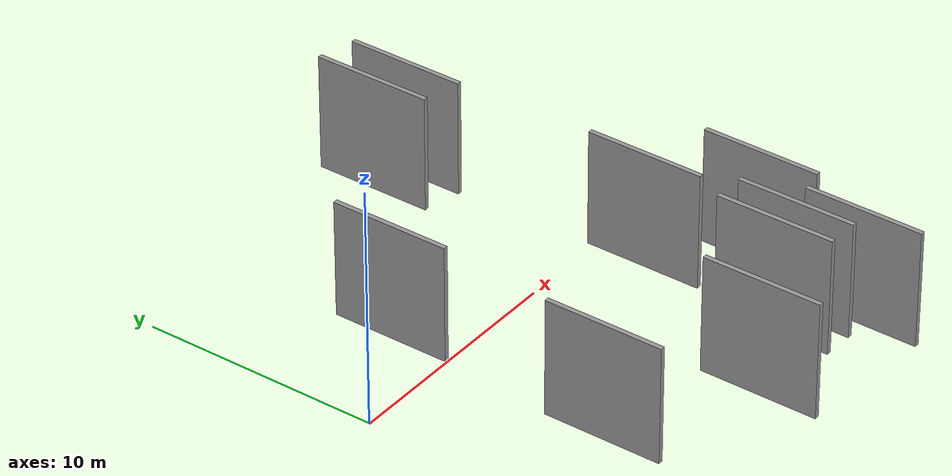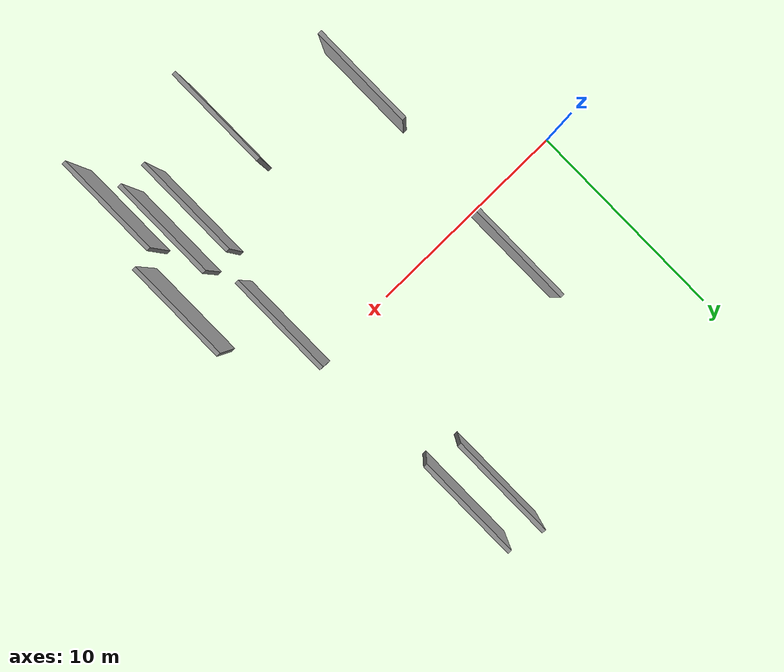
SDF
<sdf version="1.6">
 <world name="default">
  <scene>
   <sky><clouds><speed>12</speed></clouds></sky>
   <ambient>0.4 0.4 0.4 1</ambient>
   <background>0.7 0.7 0.7 1</background>
   <shadows>1</shadows>
  </scene>
  <gravity>0 0 -9.8066</gravity>
  <magnetic_field>6e-06 2.3e-05 -4.2e-05</magnetic_field>
  <physics default="0" name="default_physics" type="ode">
   <ode>
    <solver>
     <type>quick</type>
     <iters>10</iters>
     <sor>1.0</sor>
     <use_dynamic_moi_rescaling>0</use_dynamic_moi_rescaling>
    </solver>
    <constraints>
     <cfm>0</cfm>
     <erp>0.2</erp>
     <contact_max_correcting_vel>100</contact_max_correcting_vel>
     <contact_surface_layer>0.001</contact_surface_layer>
    </constraints>
   </ode>
   <max_step_size>0.004</max_step_size>
   <real_time_factor>1</real_time_factor>
   <real_time_update_rate>250</real_time_update_rate>
  </physics>
  <light name="sun" type="directional">
   <pose>0 0 10 0 0 0</pose>
   <diffuse>0.8 0.8 0.8 1</diffuse>
   <specular>0.2 0.2 0.2 1</specular>
   <attenuation>
    <range>1000</range>
    <constant>0.9</constant>
    <linear>0.01</linear>
    <quadratic>0.001</quadratic>
   </attenuation>
   <direction>-0.5 0.1 -0.9</direction>
  </light>
  <model name="grey_wall_1">
   <static>1</static>
   <pose>16.5393 -5.5922 0.0 0.000000 0.000000 1.570796</pose>
   <link name="link">
    <pose>0 0 2.50 0 0 0</pose>
    <collision name="collision"><geometry><box><size>5.00 0.2 5.00</size></box></geometry></collision>
    <visual name="visual">
     <cast_shadows>0</cast_shadows>
     <geometry><box><size>5.00 0.2 5.00</size></box></geometry>
     <material>
      <script>
       <uri>model://grey_wall/materials/scripts</uri>
       <uri>model://grey_wall/materials/textures</uri>
       <name>vrc/grey_wall</name>
      </script>
     </material>
    </visual>
   </link>
  </model>
  <model name="grey_wall_2">
   <static>1</static>
   <pose>4.7063 2.5771 0.0 0.000000 0.000000 1.570796</pose>
   <link name="link">
    <pose>0 0 2.50 0 0 0</pose>
    <collision name="collision"><geometry><box><size>5.00 0.2 5.00</size></box></geometry></collision>
    <visual name="visual">
     <cast_shadows>0</cast_shadows>
     <geometry><box><size>5.00 0.2 5.00</size></box></geometry>
     <material>
      <script>
       <uri>model://grey_wall/materials/scripts</uri>
       <uri>model://grey_wall/materials/textures</uri>
       <name>vrc/grey_wall</name>
      </script>
     </material>
    </visual>
   </link>
  </model>
  <model name="grey_wall_3">
   <static>1</static>
   <pose>12.0349 8.9862 0.0 0.000000 0.000000 1.570796</pose>
   <link name="link">
    <pose>0 0 2.50 0 0 0</pose>
    <collision name="collision"><geometry><box><size>5.00 0.2 5.00</size></box></geometry></collision>
    <visual name="visual">
     <cast_shadows>0</cast_shadows>
     <geometry><box><size>5.00 0.2 5.00</size></box></geometry>
     <material>
      <script>
       <uri>model://grey_wall/materials/scripts</uri>
       <uri>model://grey_wall/materials/textures</uri>
       <name>vrc/grey_wall</name>
      </script>
     </material>
    </visual>
   </link>
  </model>
  <model name="grey_wall_4">
   <static>1</static>
   <pose>15.5626 -10.7237 0.0 0.000000 0.000000 1.570796</pose>
   <link name="link">
    <pose>0 0 2.50 0 0 0</pose>
    <collision name="collision"><geometry><box><size>5.00 0.2 5.00</size></box></geometry></collision>
    <visual name="visual">
     <cast_shadows>0</cast_shadows>
     <geometry><box><size>5.00 0.2 5.00</size></box></geometry>
     <material>
      <script>
       <uri>model://grey_wall/materials/scripts</uri>
       <uri>model://grey_wall/materials/textures</uri>
       <name>vrc/grey_wall</name>
      </script>
     </material>
    </visual>
   </link>
  </model>
  <model name="grey_wall_5">
   <static>1</static>
   <pose>13.6332 8.6137 0.0 0.000000 0.000000 1.570796</pose>
   <link name="link">
    <pose>0 0 2.50 0 0 0</pose>
    <collision name="collision"><geometry><box><size>5.00 0.2 5.00</size></box></geometry></collision>
    <visual name="visual">
     <cast_shadows>0</cast_shadows>
     <geometry><box><size>5.00 0.2 5.00</size></box></geometry>
     <material>
      <script>
       <uri>model://grey_wall/materials/scripts</uri>
       <uri>model://grey_wall/materials/textures</uri>
       <name>vrc/grey_wall</name>
      </script>
     </material>
    </visual>
   </link>
  </model>
  <model name="grey_wall_6">
   <static>1</static>
   <pose>9.7441 -10.1977 0.0 0.000000 0.000000 1.570796</pose>
   <link name="link">
    <pose>0 0 2.50 0 0 0</pose>
    <collision name="collision"><geometry><box><size>5.00 0.2 5.00</size></box></geometry></collision>
    <visual name="visual">
     <cast_shadows>0</cast_shadows>
     <geometry><box><size>5.00 0.2 5.00</size></box></geometry>
     <material>
      <script>
       <uri>model://grey_wall/materials/scripts</uri>
       <uri>model://grey_wall/materials/textures</uri>
       <name>vrc/grey_wall</name>
      </script>
     </material>
    </visual>
   </link>
  </model>
  <model name="grey_wall_7">
   <static>1</static>
   <pose>4.2701 -7.1948 0.0 0.000000 0.000000 1.570796</pose>
   <link name="link">
    <pose>0 0 2.50 0 0 0</pose>
    <collision name="collision"><geometry><box><size>5.00 0.2 5.00</size></box></geometry></collision>
    <visual name="visual">
     <cast_shadows>0</cast_shadows>
     <geometry><box><size>5.00 0.2 5.00</size></box></geometry>
     <material>
      <script>
       <uri>model://grey_wall/materials/scripts</uri>
       <uri>model://grey_wall/materials/textures</uri>
       <name>vrc/grey_wall</name>
      </script>
     </material>
    </visual>
   </link>
  </model>
  <model name="grey_wall_8">
   <static>1</static>
   <pose>13.8960 -2.2253 0.0 0.000000 0.000000 1.570796</pose>
   <link name="link">
    <pose>0 0 2.50 0 0 0</pose>
    <collision name="collision"><geometry><box><size>5.00 0.2 5.00</size></box></geometry></collision>
    <visual name="visual">
     <cast_shadows>0</cast_shadows>
     <geometry><box><size>5.00 0.2 5.00</size></box></geometry>
     <material>
      <script>
       <uri>model://grey_wall/materials/scripts</uri>
       <uri>model://grey_wall/materials/textures</uri>
       <name>vrc/grey_wall</name>
      </script>
     </material>
    </visual>
   </link>
  </model>
  <model name="grey_wall_9">
   <static>1</static>
   <pose>14.5786 -8.4488 0.0 0.000000 0.000000 1.570796</pose>
   <link name="link">
    <pose>0 0 2.50 0 0 0</pose>
    <collision name="collision"><geometry><box><size>5.00 0.2 5.00</size></box></geometry></collision>
    <visual name="visual">
     <cast_shadows>0</cast_shadows>
     <geometry><box><size>5.00 0.2 5.00</size></box></geometry>
     <material>
      <script>
       <uri>model://grey_wall/materials/scripts</uri>
       <uri>model://grey_wall/materials/textures</uri>
       <name>vrc/grey_wall</name>
      </script>
     </material>
    </visual>
   </link>
  </model>
  <model name="grey_wall_10">
   <static>1</static>
   <pose>13.2608 -8.4026 0.0 0.000000 0.000000 1.570796</pose>
   <link name="link">
    <pose>0 0 2.50 0 0 0</pose>
    <collision name="collision"><geometry><box><size>5.00 0.2 5.00</size></box></geometry></collision>
    <visual name="visual">
     <cast_shadows>0</cast_shadows>
     <geometry><box><size>5.00 0.2 5.00</size></box></geometry>
     <material>
      <script>
       <uri>model://grey_wall/materials/scripts</uri>
       <uri>model://grey_wall/materials/textures</uri>
       <name>vrc/grey_wall</name>
      </script>
     </material>
    </visual>
   </link>
  </model>
 </world>
</sdf>
